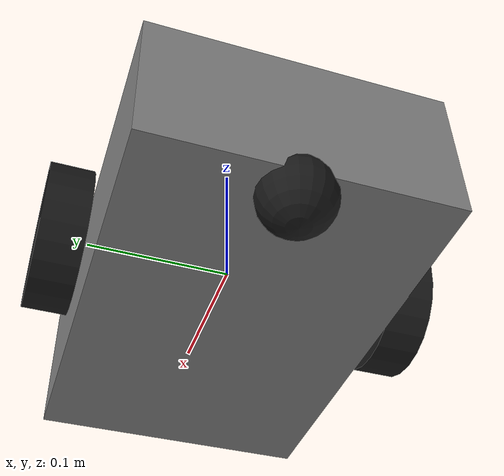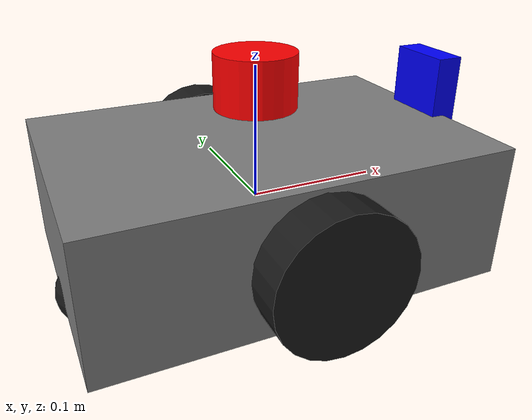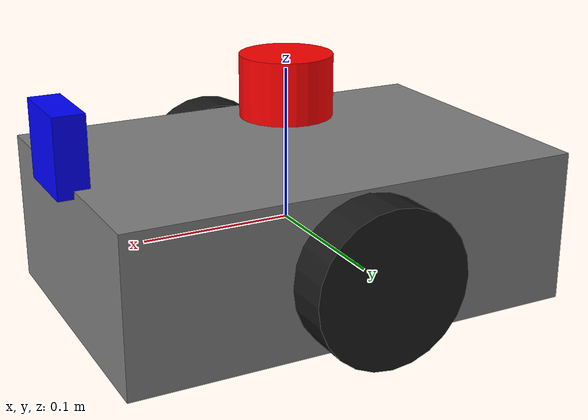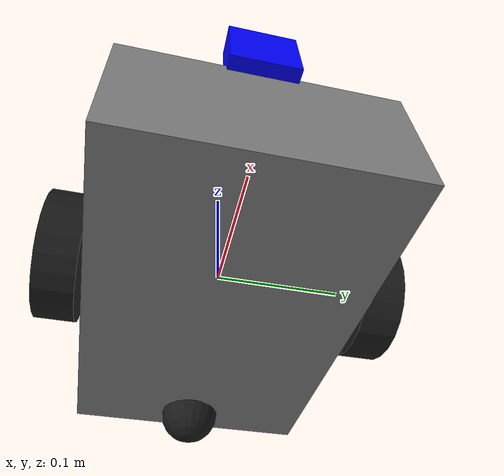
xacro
<?xml version="1.0"?>
<robot name="rover" xmlns:xacro="http://www.ros.org/wiki/xacro">

  <link name="base_link">
    <visual>
      <geometry>
        <box size="0.30 0.20 0.10"/>
      </geometry>
      <material name="grey">
        <color rgba="0.5 0.5 0.5 1"/>
      </material>
    </visual>
    <collision>
      <geometry>
        <box size="0.30 0.20 0.10"/>
      </geometry>
    </collision>
    <inertial>
      <mass value="2.0"/>
      <inertia ixx="0.01" ixy="0" ixz="0" iyy="0.02" iyz="0" izz="0.02"/>
    </inertial>
  </link>
<link name="left_wheel">
    <visual>
      <origin xyz="0 0 0" rpy="1.5708 0 0"/>
      <geometry>
        <cylinder radius="0.05" length="0.03"/>
      </geometry>
      <material name="black">
        <color rgba="0.1 0.1 0.1 1"/>
      </material>
    </visual>
    <collision>
      <origin xyz="0 0 0" rpy="1.5708 0 0"/>
      <geometry>
        <cylinder radius="0.05" length="0.03"/>
      </geometry>
    </collision>
    <inertial>
      <mass value="0.2"/>
      <inertia ixx="0.0005" ixy="0" ixz="0" iyy="0.0005" iyz="0" izz="0.0005"/>
    </inertial>
  </link>

  <joint name="left_wheel_joint" type="continuous">
    <parent link="base_link"/>
    <child link="left_wheel"/>
    <origin xyz="0 0.12 0" rpy="0 0 0"/>
    <axis xyz="0 1 0"/>
  </joint>

  <link name="right_wheel">
    <visual>
      <origin xyz="0 0 0" rpy="1.5708 0 0" />
      <geometry>
        <cylinder radius = "0.05" length="0.03"/>
      </geometry>
      <material name="black">
        <color rgba="0.1 0.1 0.1 1" />
      </material>
    </visual>
    <collision>
      <origin xyz="0 0 0" rpy="1.5708 0 0"/>
      <geometry>
        <cylinder radius="0.05" length="0.03" />
      </geometry>
    </collision>
    <inertial>
      <mass value="0.2"/>
      <inertia ixx="0.0005" ixy="0" ixz="0" iyy="0.0005" iyz="0" izz="0.0005"/>
    </inertial>
  </link>

  <joint name="right_wheel_joint" type="continuous">
    <parent link="base_link"/>
    <child link="right_wheel"/>
    <origin xyz="0 -0.12 0" rpy="0 0 0"/>
    <axis xyz="0 1 0"/>
  </joint>

  <link name="caster_wheel">
    <visual>
      <geometry>
        <sphere radius="0.025"/>
      </geometry>
      <material name="black">
        <color rgba="0.1 0.1 0.1 1"/>
      </material>
    </visual>
    <collision>
      <geometry>
        <sphere radius="0.025"/>
      </geometry>
    </collision>
    <inertial>
      <mass value="0.05"/>
      <inertia ixx="0.0001" ixy="0" ixz="0" iyy="0.0001" iyz="0" izz="0.0001"/>
    </inertial>
  </link>

  <joint name="caster_joint" type="fixed">
    <parent link="base_link"/>
    <child link="caster_wheel"/>
    <origin xyz="-0.13 0 -0.05" rpy="0 0 0"/>
  </joint>

  <link name="camera_link">
    <visual>
      <geometry>
        <box size="0.02 0.05 0.05"/>
      </geometry>
      <material name="blue">
        <color rgba="0 0 1 1"/>
      </material>
    </visual>
  </link>

  <joint name="camera_joint" type="fixed">
    <parent link="base_link"/>
    <child link="camera_link"/>
    <origin xyz="0.15 0 0.07" rpy="0 0 0"/>
  </joint>

  <link name="lidar_link">
    <visual>
      <geometry>
        <cylinder radius="0.03" length="0.04"/>
      </geometry>
      <material name="red">
        <color rgba="1 0 0 1"/>
      </material>
    </visual>
  </link>

  <joint name="lidar_joint" type="fixed">
    <parent link="base_link"/>
    <child link="lidar_link"/>
    <origin xyz="0 0 0.09" rpy="0 0 0"/>
  </joint>

  <gazebo reference="camera_link">
    <sensor name="camera_sensor" type="camera">
      <update_rate>30</update_rate>
      <camera>
        <horizontal_fov>1.396</horizontal_fov>
        <image>
          <width>640</width>
          <height>480</height>
        </image>
        <clip>
          <near>0.05</near>
          <far>10</far>
        </clip>
      </camera>
      <topic>camera/image_raw</topic>
      <always_on>true</always_on>
      <visualize>true</visualize>
    </sensor>
  </gazebo>

  <gazebo reference="lidar_link">
    <sensor name="lidar_sensor" type="gpu_lidar">
      <update_rate>10</update_rate>
      <lidar>
        <scan>
          <horizontal>
            <samples>360</samples>
            <min_angle>-3.14159</min_angle>
            <max_angle>3.14159</max_angle>
          </horizontal>
        </scan>
        <range>
          <min>0.08</min>
          <max>6.0</max>
        </range>
      </lidar>
      <topic>scan</topic>
      <always_on>true</always_on>
      <visualize>true</visualize>
    </sensor>
  </gazebo>

  <gazebo>
    <plugin filename="gz-sim-diff-drive-system" name="gz::sim::systems::DiffDrive">
      <left_joint>left_wheel_joint</left_joint>
      <right_joint>right_wheel_joint</right_joint>
      <wheel_separation>0.24</wheel_separation>
      <wheel_radius>0.05</wheel_radius>
      <odom_publish_frequency>30</odom_publish_frequency>
      <topic>cmd_vel</topic>
      <odom_topic>odom</odom_topic>
      <frame_id>odom</frame_id>
      <child_frame_id>base_link</child_frame_id>
    </plugin>

    <plugin filename="gz-sim-joint-state-publisher-system" name="gz::sim::systems::JointStatePublisher">
      <topic>joint_states</topic>
    </plugin>
  </gazebo>

</robot>
